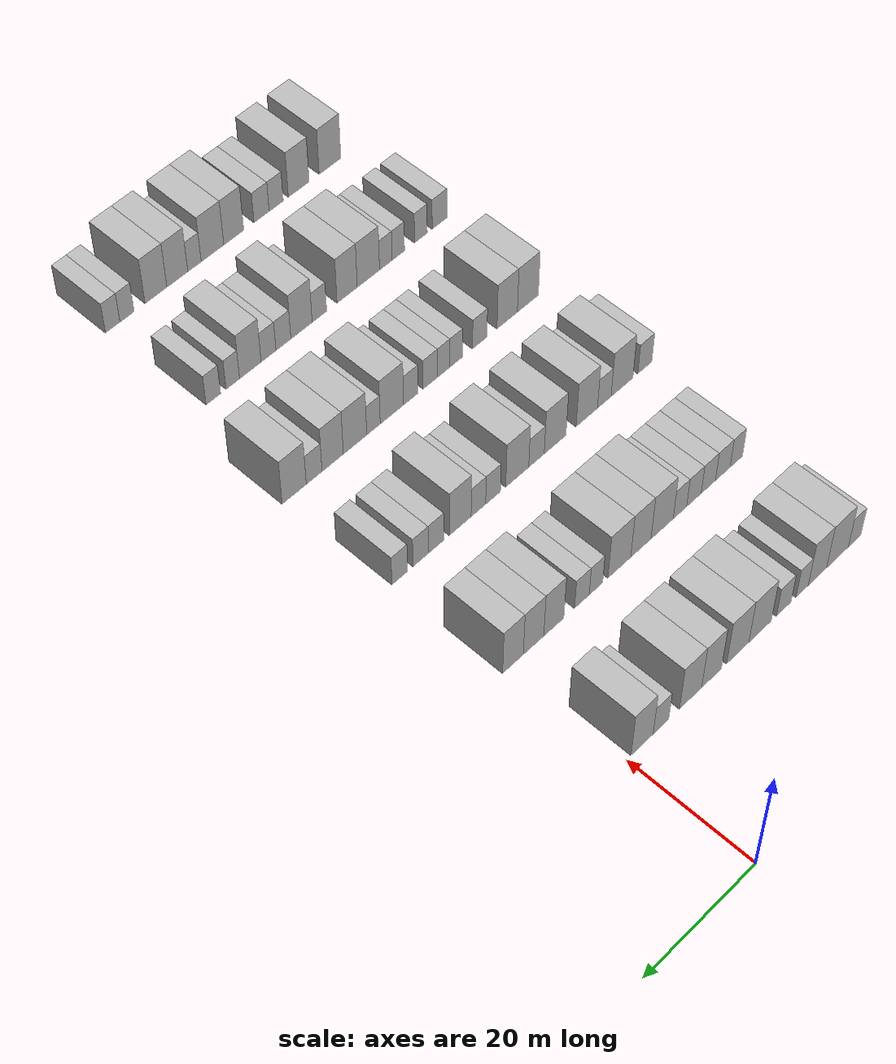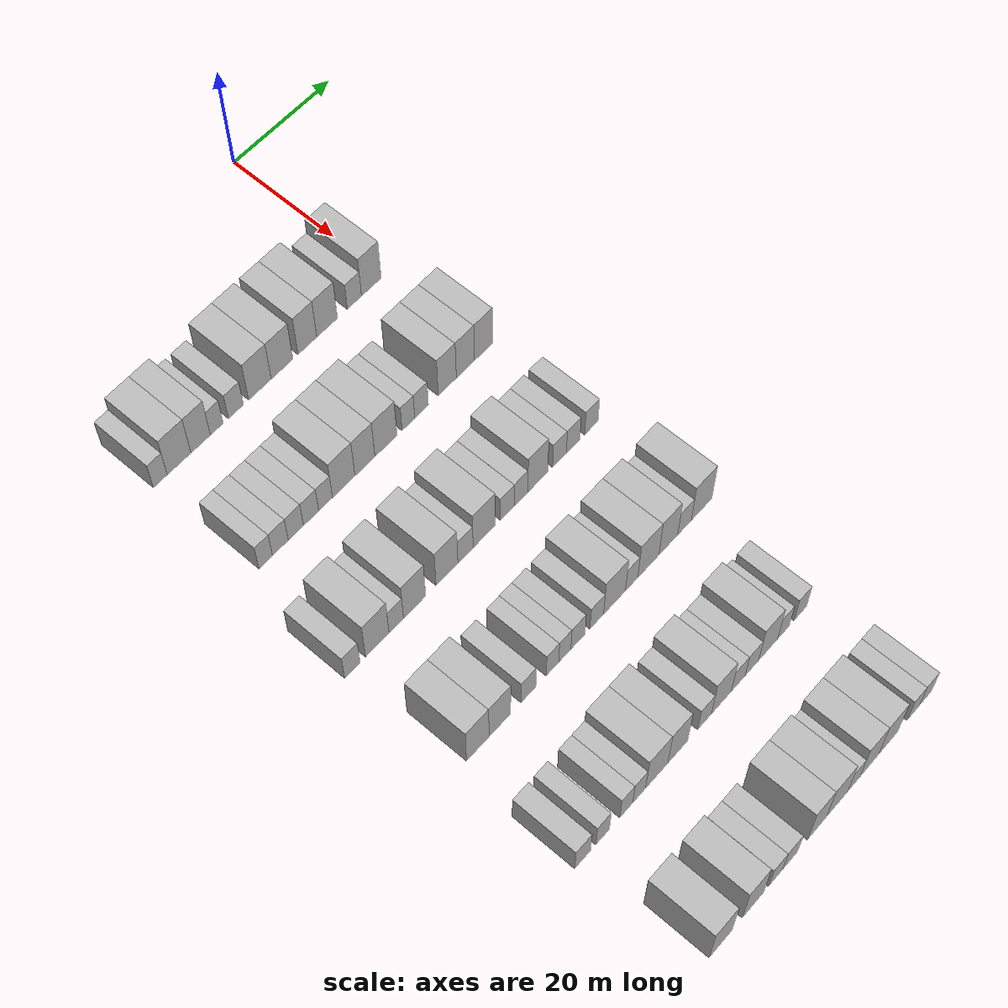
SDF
<sdf version="1.6">
 <world name="default">
  <model name="building_75">
   <static>1</static>
   <pose>25.0000 -44.1335 0 0.000000 0.000000 0.000000</pose>
   <link name="link">
    <pose>0 0 3.00 0 0 0</pose>
    <collision name="collision"><geometry><box><size>10.0000 2.5778 6.0000</size></box></geometry></collision>
    <visual name="visual">
     <cast_shadows>0</cast_shadows>
     <geometry><box><size>10.0000 2.5778 6.0000</size></box></geometry>
     <material>
      <script>
       <uri>model://HANNAS_wall/materials/scripts</uri>
       <uri>model://HANNAS_wall/materials/textures</uri>
       <name>vrc/HANNAS_wall</name>
      </script>
     </material>
    </visual>
   </link>
  </model>
  <model name="building_76">
   <static>1</static>
   <pose>25.0000 -40.6232 0 0.000000 0.000000 0.000000</pose>
   <link name="link">
    <pose>0 0 4.50 0 0 0</pose>
    <collision name="collision"><geometry><box><size>10.0000 4.4428 9.0000</size></box></geometry></collision>
    <visual name="visual">
     <cast_shadows>0</cast_shadows>
     <geometry><box><size>10.0000 4.4428 9.0000</size></box></geometry>
     <material>
      <script>
       <uri>model://HANNAS_wall/materials/scripts</uri>
       <uri>model://HANNAS_wall/materials/textures</uri>
       <name>vrc/HANNAS_wall</name>
      </script>
     </material>
    </visual>
   </link>
  </model>
  <model name="building_77">
   <static>1</static>
   <pose>25.0000 -36.5516 0 0.000000 0.000000 0.000000</pose>
   <link name="link">
    <pose>0 0 4.50 0 0 0</pose>
    <collision name="collision"><geometry><box><size>10.0000 3.7005 9.0000</size></box></geometry></collision>
    <visual name="visual">
     <cast_shadows>0</cast_shadows>
     <geometry><box><size>10.0000 3.7005 9.0000</size></box></geometry>
     <material>
      <script>
       <uri>model://HANNAS_wall/materials/scripts</uri>
       <uri>model://HANNAS_wall/materials/textures</uri>
       <name>vrc/HANNAS_wall</name>
      </script>
     </material>
    </visual>
   </link>
  </model>
  <model name="building_78">
   <static>1</static>
   <pose>25.0000 -33.4884 0 0.000000 0.000000 0.000000</pose>
   <link name="link">
    <pose>0 0 3.00 0 0 0</pose>
    <collision name="collision"><geometry><box><size>10.0000 2.4259 6.0000</size></box></geometry></collision>
    <visual name="visual">
     <cast_shadows>0</cast_shadows>
     <geometry><box><size>10.0000 2.4259 6.0000</size></box></geometry>
     <material>
      <script>
       <uri>model://HANNAS_wall/materials/scripts</uri>
       <uri>model://HANNAS_wall/materials/textures</uri>
       <name>vrc/HANNAS_wall</name>
      </script>
     </material>
    </visual>
   </link>
  </model>
  <model name="building_79">
   <static>1</static>
   <pose>25.0000 -29.8310 0 0.000000 0.000000 0.000000</pose>
   <link name="link">
    <pose>0 0 3.00 0 0 0</pose>
    <collision name="collision"><geometry><box><size>10.0000 2.8890 6.0000</size></box></geometry></collision>
    <visual name="visual">
     <cast_shadows>0</cast_shadows>
     <geometry><box><size>10.0000 2.8890 6.0000</size></box></geometry>
     <material>
      <script>
       <uri>model://HANNAS_wall/materials/scripts</uri>
       <uri>model://HANNAS_wall/materials/textures</uri>
       <name>vrc/HANNAS_wall</name>
      </script>
     </material>
    </visual>
   </link>
  </model>
  <model name="building_80">
   <static>1</static>
   <pose>25.0000 -25.1808 0 0.000000 0.000000 0.000000</pose>
   <link name="link">
    <pose>0 0 4.50 0 0 0</pose>
    <collision name="collision"><geometry><box><size>10.0000 4.4114 9.0000</size></box></geometry></collision>
    <visual name="visual">
     <cast_shadows>0</cast_shadows>
     <geometry><box><size>10.0000 4.4114 9.0000</size></box></geometry>
     <material>
      <script>
       <uri>model://HANNAS_wall/materials/scripts</uri>
       <uri>model://HANNAS_wall/materials/textures</uri>
       <name>vrc/HANNAS_wall</name>
      </script>
     </material>
    </visual>
   </link>
  </model>
  <model name="building_81">
   <static>1</static>
   <pose>25.0000 -20.8322 0 0.000000 0.000000 0.000000</pose>
   <link name="link">
    <pose>0 0 4.50 0 0 0</pose>
    <collision name="collision"><geometry><box><size>10.0000 4.2859 9.0000</size></box></geometry></collision>
    <visual name="visual">
     <cast_shadows>0</cast_shadows>
     <geometry><box><size>10.0000 4.2859 9.0000</size></box></geometry>
     <material>
      <script>
       <uri>model://HANNAS_wall/materials/scripts</uri>
       <uri>model://HANNAS_wall/materials/textures</uri>
       <name>vrc/HANNAS_wall</name>
      </script>
     </material>
    </visual>
   </link>
  </model>
  <model name="building_82">
   <static>1</static>
   <pose>25.0000 -15.8119 0 0.000000 0.000000 0.000000</pose>
   <link name="link">
    <pose>0 0 4.50 0 0 0</pose>
    <collision name="collision"><geometry><box><size>10.0000 3.7547 9.0000</size></box></geometry></collision>
    <visual name="visual">
     <cast_shadows>0</cast_shadows>
     <geometry><box><size>10.0000 3.7547 9.0000</size></box></geometry>
     <material>
      <script>
       <uri>model://HANNAS_wall/materials/scripts</uri>
       <uri>model://HANNAS_wall/materials/textures</uri>
       <name>vrc/HANNAS_wall</name>
      </script>
     </material>
    </visual>
   </link>
  </model>
  <model name="building_83">
   <static>1</static>
   <pose>25.0000 -11.8497 0 0.000000 0.000000 0.000000</pose>
   <link name="link">
    <pose>0 0 4.50 0 0 0</pose>
    <collision name="collision"><geometry><box><size>10.0000 4.1697 9.0000</size></box></geometry></collision>
    <visual name="visual">
     <cast_shadows>0</cast_shadows>
     <geometry><box><size>10.0000 4.1697 9.0000</size></box></geometry>
     <material>
      <script>
       <uri>model://HANNAS_wall/materials/scripts</uri>
       <uri>model://HANNAS_wall/materials/textures</uri>
       <name>vrc/HANNAS_wall</name>
      </script>
     </material>
    </visual>
   </link>
  </model>
  <model name="building_84">
   <static>1</static>
   <pose>25.0000 -6.3131 0 0.000000 0.000000 0.000000</pose>
   <link name="link">
    <pose>0 0 3.00 0 0 0</pose>
    <collision name="collision"><geometry><box><size>10.0000 2.9035 6.0000</size></box></geometry></collision>
    <visual name="visual">
     <cast_shadows>0</cast_shadows>
     <geometry><box><size>10.0000 2.9035 6.0000</size></box></geometry>
     <material>
      <script>
       <uri>model://HANNAS_wall/materials/scripts</uri>
       <uri>model://HANNAS_wall/materials/textures</uri>
       <name>vrc/HANNAS_wall</name>
      </script>
     </material>
    </visual>
   </link>
  </model>
  <model name="building_85">
   <static>1</static>
   <pose>25.0000 -2.8423 0 0.000000 0.000000 0.000000</pose>
   <link name="link">
    <pose>0 0 4.50 0 0 0</pose>
    <collision name="collision"><geometry><box><size>10.0000 4.0379 9.0000</size></box></geometry></collision>
    <visual name="visual">
     <cast_shadows>0</cast_shadows>
     <geometry><box><size>10.0000 4.0379 9.0000</size></box></geometry>
     <material>
      <script>
       <uri>model://HANNAS_wall/materials/scripts</uri>
       <uri>model://HANNAS_wall/materials/textures</uri>
       <name>vrc/HANNAS_wall</name>
      </script>
     </material>
    </visual>
   </link>
  </model>
  <model name="building_243">
   <static>1</static>
   <pose>44.0000 -43.4792 0 0.000000 0.000000 0.000000</pose>
   <link name="link">
    <pose>0 0 3.00 0 0 0</pose>
    <collision name="collision"><geometry><box><size>10.0000 2.5277 6.0000</size></box></geometry></collision>
    <visual name="visual">
     <cast_shadows>0</cast_shadows>
     <geometry><box><size>10.0000 2.5277 6.0000</size></box></geometry>
     <material>
      <script>
       <uri>model://HANNAS_wall/materials/scripts</uri>
       <uri>model://HANNAS_wall/materials/textures</uri>
       <name>vrc/HANNAS_wall</name>
      </script>
     </material>
    </visual>
   </link>
  </model>
  <model name="building_244">
   <static>1</static>
   <pose>44.0000 -40.7286 0 0.000000 0.000000 0.000000</pose>
   <link name="link">
    <pose>0 0 3.00 0 0 0</pose>
    <collision name="collision"><geometry><box><size>10.0000 2.9734 6.0000</size></box></geometry></collision>
    <visual name="visual">
     <cast_shadows>0</cast_shadows>
     <geometry><box><size>10.0000 2.9734 6.0000</size></box></geometry>
     <material>
      <script>
       <uri>model://HANNAS_wall/materials/scripts</uri>
       <uri>model://HANNAS_wall/materials/textures</uri>
       <name>vrc/HANNAS_wall</name>
      </script>
     </material>
    </visual>
   </link>
  </model>
  <model name="building_245">
   <static>1</static>
   <pose>44.0000 -37.8044 0 0.000000 0.000000 0.000000</pose>
   <link name="link">
    <pose>0 0 3.00 0 0 0</pose>
    <collision name="collision"><geometry><box><size>10.0000 2.8751 6.0000</size></box></geometry></collision>
    <visual name="visual">
     <cast_shadows>0</cast_shadows>
     <geometry><box><size>10.0000 2.8751 6.0000</size></box></geometry>
     <material>
      <script>
       <uri>model://HANNAS_wall/materials/scripts</uri>
       <uri>model://HANNAS_wall/materials/textures</uri>
       <name>vrc/HANNAS_wall</name>
      </script>
     </material>
    </visual>
   </link>
  </model>
  <model name="building_246">
   <static>1</static>
   <pose>44.0000 -34.9215 0 0.000000 0.000000 0.000000</pose>
   <link name="link">
    <pose>0 0 3.00 0 0 0</pose>
    <collision name="collision"><geometry><box><size>10.0000 2.8907 6.0000</size></box></geometry></collision>
    <visual name="visual">
     <cast_shadows>0</cast_shadows>
     <geometry><box><size>10.0000 2.8907 6.0000</size></box></geometry>
     <material>
      <script>
       <uri>model://HANNAS_wall/materials/scripts</uri>
       <uri>model://HANNAS_wall/materials/textures</uri>
       <name>vrc/HANNAS_wall</name>
      </script>
     </material>
    </visual>
   </link>
  </model>
  <model name="building_247">
   <static>1</static>
   <pose>44.0000 -32.1425 0 0.000000 0.000000 0.000000</pose>
   <link name="link">
    <pose>0 0 3.00 0 0 0</pose>
    <collision name="collision"><geometry><box><size>10.0000 2.6673 6.0000</size></box></geometry></collision>
    <visual name="visual">
     <cast_shadows>0</cast_shadows>
     <geometry><box><size>10.0000 2.6673 6.0000</size></box></geometry>
     <material>
      <script>
       <uri>model://HANNAS_wall/materials/scripts</uri>
       <uri>model://HANNAS_wall/materials/textures</uri>
       <name>vrc/HANNAS_wall</name>
      </script>
     </material>
    </visual>
   </link>
  </model>
  <model name="building_248">
   <static>1</static>
   <pose>44.0000 -28.6306 0 0.000000 0.000000 0.000000</pose>
   <link name="link">
    <pose>0 0 4.50 0 0 0</pose>
    <collision name="collision"><geometry><box><size>10.0000 4.3564 9.0000</size></box></geometry></collision>
    <visual name="visual">
     <cast_shadows>0</cast_shadows>
     <geometry><box><size>10.0000 4.3564 9.0000</size></box></geometry>
     <material>
      <script>
       <uri>model://HANNAS_wall/materials/scripts</uri>
       <uri>model://HANNAS_wall/materials/textures</uri>
       <name>vrc/HANNAS_wall</name>
      </script>
     </material>
    </visual>
   </link>
  </model>
  <model name="building_249">
   <static>1</static>
   <pose>44.0000 -24.4943 0 0.000000 0.000000 0.000000</pose>
   <link name="link">
    <pose>0 0 4.50 0 0 0</pose>
    <collision name="collision"><geometry><box><size>10.0000 3.9162 9.0000</size></box></geometry></collision>
    <visual name="visual">
     <cast_shadows>0</cast_shadows>
     <geometry><box><size>10.0000 3.9162 9.0000</size></box></geometry>
     <material>
      <script>
       <uri>model://HANNAS_wall/materials/scripts</uri>
       <uri>model://HANNAS_wall/materials/textures</uri>
       <name>vrc/HANNAS_wall</name>
      </script>
     </material>
    </visual>
   </link>
  </model>
  <model name="building_250">
   <static>1</static>
   <pose>44.0000 -20.3490 0 0.000000 0.000000 0.000000</pose>
   <link name="link">
    <pose>0 0 4.50 0 0 0</pose>
    <collision name="collision"><geometry><box><size>10.0000 4.3742 9.0000</size></box></geometry></collision>
    <visual name="visual">
     <cast_shadows>0</cast_shadows>
     <geometry><box><size>10.0000 4.3742 9.0000</size></box></geometry>
     <material>
      <script>
       <uri>model://HANNAS_wall/materials/scripts</uri>
       <uri>model://HANNAS_wall/materials/textures</uri>
       <name>vrc/HANNAS_wall</name>
      </script>
     </material>
    </visual>
   </link>
  </model>
  <model name="building_251">
   <static>1</static>
   <pose>44.0000 -15.8861 0 0.000000 0.000000 0.000000</pose>
   <link name="link">
    <pose>0 0 3.00 0 0 0</pose>
    <collision name="collision"><geometry><box><size>10.0000 2.5515 6.0000</size></box></geometry></collision>
    <visual name="visual">
     <cast_shadows>0</cast_shadows>
     <geometry><box><size>10.0000 2.5515 6.0000</size></box></geometry>
     <material>
      <script>
       <uri>model://HANNAS_wall/materials/scripts</uri>
       <uri>model://HANNAS_wall/materials/textures</uri>
       <name>vrc/HANNAS_wall</name>
      </script>
     </material>
    </visual>
   </link>
  </model>
  <model name="building_252">
   <static>1</static>
   <pose>44.0000 -13.2332 0 0.000000 0.000000 0.000000</pose>
   <link name="link">
    <pose>0 0 3.00 0 0 0</pose>
    <collision name="collision"><geometry><box><size>10.0000 2.7543 6.0000</size></box></geometry></collision>
    <visual name="visual">
     <cast_shadows>0</cast_shadows>
     <geometry><box><size>10.0000 2.7543 6.0000</size></box></geometry>
     <material>
      <script>
       <uri>model://HANNAS_wall/materials/scripts</uri>
       <uri>model://HANNAS_wall/materials/textures</uri>
       <name>vrc/HANNAS_wall</name>
      </script>
     </material>
    </visual>
   </link>
  </model>
  <model name="building_253">
   <static>1</static>
   <pose>44.0000 -7.9990 0 0.000000 0.000000 0.000000</pose>
   <link name="link">
    <pose>0 0 4.50 0 0 0</pose>
    <collision name="collision"><geometry><box><size>10.0000 3.7141 9.0000</size></box></geometry></collision>
    <visual name="visual">
     <cast_shadows>0</cast_shadows>
     <geometry><box><size>10.0000 3.7141 9.0000</size></box></geometry>
     <material>
      <script>
       <uri>model://HANNAS_wall/materials/scripts</uri>
       <uri>model://HANNAS_wall/materials/textures</uri>
       <name>vrc/HANNAS_wall</name>
      </script>
     </material>
    </visual>
   </link>
  </model>
  <model name="building_254">
   <static>1</static>
   <pose>44.0000 -4.2663 0 0.000000 0.000000 0.000000</pose>
   <link name="link">
    <pose>0 0 4.50 0 0 0</pose>
    <collision name="collision"><geometry><box><size>10.0000 3.7513 9.0000</size></box></geometry></collision>
    <visual name="visual">
     <cast_shadows>0</cast_shadows>
     <geometry><box><size>10.0000 3.7513 9.0000</size></box></geometry>
     <material>
      <script>
       <uri>model://HANNAS_wall/materials/scripts</uri>
       <uri>model://HANNAS_wall/materials/textures</uri>
       <name>vrc/HANNAS_wall</name>
      </script>
     </material>
    </visual>
   </link>
  </model>
  <model name="building_255">
   <static>1</static>
   <pose>44.0000 -0.5148 0 0.000000 0.000000 0.000000</pose>
   <link name="link">
    <pose>0 0 4.50 0 0 0</pose>
    <collision name="collision"><geometry><box><size>10.0000 3.7516 9.0000</size></box></geometry></collision>
    <visual name="visual">
     <cast_shadows>0</cast_shadows>
     <geometry><box><size>10.0000 3.7516 9.0000</size></box></geometry>
     <material>
      <script>
       <uri>model://HANNAS_wall/materials/scripts</uri>
       <uri>model://HANNAS_wall/materials/textures</uri>
       <name>vrc/HANNAS_wall</name>
      </script>
     </material>
    </visual>
   </link>
  </model>
  <model name="building_413">
   <static>1</static>
   <pose>63.0000 -47.1853 0 0.000000 0.000000 0.000000</pose>
   <link name="link">
    <pose>0 0 3.00 0 0 0</pose>
    <collision name="collision"><geometry><box><size>10.0000 2.8769 6.0000</size></box></geometry></collision>
    <visual name="visual">
     <cast_shadows>0</cast_shadows>
     <geometry><box><size>10.0000 2.8769 6.0000</size></box></geometry>
     <material>
      <script>
       <uri>model://HANNAS_wall/materials/scripts</uri>
       <uri>model://HANNAS_wall/materials/textures</uri>
       <name>vrc/HANNAS_wall</name>
      </script>
     </material>
    </visual>
   </link>
  </model>
  <model name="building_414">
   <static>1</static>
   <pose>63.0000 -42.5380 0 0.000000 0.000000 0.000000</pose>
   <link name="link">
    <pose>0 0 4.50 0 0 0</pose>
    <collision name="collision"><geometry><box><size>10.0000 4.4177 9.0000</size></box></geometry></collision>
    <visual name="visual">
     <cast_shadows>0</cast_shadows>
     <geometry><box><size>10.0000 4.4177 9.0000</size></box></geometry>
     <material>
      <script>
       <uri>model://HANNAS_wall/materials/scripts</uri>
       <uri>model://HANNAS_wall/materials/textures</uri>
       <name>vrc/HANNAS_wall</name>
      </script>
     </material>
    </visual>
   </link>
  </model>
  <model name="building_415">
   <static>1</static>
   <pose>63.0000 -38.9549 0 0.000000 0.000000 0.000000</pose>
   <link name="link">
    <pose>0 0 3.00 0 0 0</pose>
    <collision name="collision"><geometry><box><size>10.0000 2.7484 6.0000</size></box></geometry></collision>
    <visual name="visual">
     <cast_shadows>0</cast_shadows>
     <geometry><box><size>10.0000 2.7484 6.0000</size></box></geometry>
     <material>
      <script>
       <uri>model://HANNAS_wall/materials/scripts</uri>
       <uri>model://HANNAS_wall/materials/textures</uri>
       <name>vrc/HANNAS_wall</name>
      </script>
     </material>
    </visual>
   </link>
  </model>
  <model name="building_416">
   <static>1</static>
   <pose>63.0000 -35.4627 0 0.000000 0.000000 0.000000</pose>
   <link name="link">
    <pose>0 0 4.50 0 0 0</pose>
    <collision name="collision"><geometry><box><size>10.0000 4.2361 9.0000</size></box></geometry></collision>
    <visual name="visual">
     <cast_shadows>0</cast_shadows>
     <geometry><box><size>10.0000 4.2361 9.0000</size></box></geometry>
     <material>
      <script>
       <uri>model://HANNAS_wall/materials/scripts</uri>
       <uri>model://HANNAS_wall/materials/textures</uri>
       <name>vrc/HANNAS_wall</name>
      </script>
     </material>
    </visual>
   </link>
  </model>
  <model name="building_417">
   <static>1</static>
   <pose>63.0000 -29.2158 0 0.000000 0.000000 0.000000</pose>
   <link name="link">
    <pose>0 0 4.50 0 0 0</pose>
    <collision name="collision"><geometry><box><size>10.0000 4.2576 9.0000</size></box></geometry></collision>
    <visual name="visual">
     <cast_shadows>0</cast_shadows>
     <geometry><box><size>10.0000 4.2576 9.0000</size></box></geometry>
     <material>
      <script>
       <uri>model://HANNAS_wall/materials/scripts</uri>
       <uri>model://HANNAS_wall/materials/textures</uri>
       <name>vrc/HANNAS_wall</name>
      </script>
     </material>
    </visual>
   </link>
  </model>
  <model name="building_418">
   <static>1</static>
   <pose>63.0000 -25.5880 0 0.000000 0.000000 0.000000</pose>
   <link name="link">
    <pose>0 0 3.00 0 0 0</pose>
    <collision name="collision"><geometry><box><size>10.0000 2.9980 6.0000</size></box></geometry></collision>
    <visual name="visual">
     <cast_shadows>0</cast_shadows>
     <geometry><box><size>10.0000 2.9980 6.0000</size></box></geometry>
     <material>
      <script>
       <uri>model://HANNAS_wall/materials/scripts</uri>
       <uri>model://HANNAS_wall/materials/textures</uri>
       <name>vrc/HANNAS_wall</name>
      </script>
     </material>
    </visual>
   </link>
  </model>
  <model name="building_419">
   <static>1</static>
   <pose>63.0000 -21.8840 0 0.000000 0.000000 0.000000</pose>
   <link name="link">
    <pose>0 0 4.50 0 0 0</pose>
    <collision name="collision"><geometry><box><size>10.0000 4.4101 9.0000</size></box></geometry></collision>
    <visual name="visual">
     <cast_shadows>0</cast_shadows>
     <geometry><box><size>10.0000 4.4101 9.0000</size></box></geometry>
     <material>
      <script>
       <uri>model://HANNAS_wall/materials/scripts</uri>
       <uri>model://HANNAS_wall/materials/textures</uri>
       <name>vrc/HANNAS_wall</name>
      </script>
     </material>
    </visual>
   </link>
  </model>
  <model name="building_420">
   <static>1</static>
   <pose>63.0000 -17.2790 0 0.000000 0.000000 0.000000</pose>
   <link name="link">
    <pose>0 0 3.00 0 0 0</pose>
    <collision name="collision"><geometry><box><size>10.0000 2.7999 6.0000</size></box></geometry></collision>
    <visual name="visual">
     <cast_shadows>0</cast_shadows>
     <geometry><box><size>10.0000 2.7999 6.0000</size></box></geometry>
     <material>
      <script>
       <uri>model://HANNAS_wall/materials/scripts</uri>
       <uri>model://HANNAS_wall/materials/textures</uri>
       <name>vrc/HANNAS_wall</name>
      </script>
     </material>
    </visual>
   </link>
  </model>
  <model name="building_421">
   <static>1</static>
   <pose>63.0000 -14.5141 0 0.000000 0.000000 0.000000</pose>
   <link name="link">
    <pose>0 0 3.00 0 0 0</pose>
    <collision name="collision"><geometry><box><size>10.0000 2.7298 6.0000</size></box></geometry></collision>
    <visual name="visual">
     <cast_shadows>0</cast_shadows>
     <geometry><box><size>10.0000 2.7298 6.0000</size></box></geometry>
     <material>
      <script>
       <uri>model://HANNAS_wall/materials/scripts</uri>
       <uri>model://HANNAS_wall/materials/textures</uri>
       <name>vrc/HANNAS_wall</name>
      </script>
     </material>
    </visual>
   </link>
  </model>
  <model name="building_422">
   <static>1</static>
   <pose>63.0000 -11.1131 0 0.000000 0.000000 0.000000</pose>
   <link name="link">
    <pose>0 0 4.50 0 0 0</pose>
    <collision name="collision"><geometry><box><size>10.0000 4.0723 9.0000</size></box></geometry></collision>
    <visual name="visual">
     <cast_shadows>0</cast_shadows>
     <geometry><box><size>10.0000 4.0723 9.0000</size></box></geometry>
     <material>
      <script>
       <uri>model://HANNAS_wall/materials/scripts</uri>
       <uri>model://HANNAS_wall/materials/textures</uri>
       <name>vrc/HANNAS_wall</name>
      </script>
     </material>
    </visual>
   </link>
  </model>
  <model name="building_423">
   <static>1</static>
   <pose>63.0000 -6.6524 0 0.000000 0.000000 0.000000</pose>
   <link name="link">
    <pose>0 0 3.00 0 0 0</pose>
    <collision name="collision"><geometry><box><size>10.0000 2.8490 6.0000</size></box></geometry></collision>
    <visual name="visual">
     <cast_shadows>0</cast_shadows>
     <geometry><box><size>10.0000 2.8490 6.0000</size></box></geometry>
     <material>
      <script>
       <uri>model://HANNAS_wall/materials/scripts</uri>
       <uri>model://HANNAS_wall/materials/textures</uri>
       <name>vrc/HANNAS_wall</name>
      </script>
     </material>
    </visual>
   </link>
  </model>
  <model name="building_424">
   <static>1</static>
   <pose>63.0000 -3.8232 0 0.000000 0.000000 0.000000</pose>
   <link name="link">
    <pose>0 0 3.00 0 0 0</pose>
    <collision name="collision"><geometry><box><size>10.0000 2.8093 6.0000</size></box></geometry></collision>
    <visual name="visual">
     <cast_shadows>0</cast_shadows>
     <geometry><box><size>10.0000 2.8093 6.0000</size></box></geometry>
     <material>
      <script>
       <uri>model://HANNAS_wall/materials/scripts</uri>
       <uri>model://HANNAS_wall/materials/textures</uri>
       <name>vrc/HANNAS_wall</name>
      </script>
     </material>
    </visual>
   </link>
  </model>
  <model name="building_425">
   <static>1</static>
   <pose>63.0000 -0.0105 0 0.000000 0.000000 0.000000</pose>
   <link name="link">
    <pose>0 0 3.00 0 0 0</pose>
    <collision name="collision"><geometry><box><size>10.0000 2.8162 6.0000</size></box></geometry></collision>
    <visual name="visual">
     <cast_shadows>0</cast_shadows>
     <geometry><box><size>10.0000 2.8162 6.0000</size></box></geometry>
     <material>
      <script>
       <uri>model://HANNAS_wall/materials/scripts</uri>
       <uri>model://HANNAS_wall/materials/textures</uri>
       <name>vrc/HANNAS_wall</name>
      </script>
     </material>
    </visual>
   </link>
  </model>
  <model name="building_581">
   <static>1</static>
   <pose>82.0000 -44.6354 0 0.000000 0.000000 0.000000</pose>
   <link name="link">
    <pose>0 0 4.50 0 0 0</pose>
    <collision name="collision"><geometry><box><size>10.0000 4.2456 9.0000</size></box></geometry></collision>
    <visual name="visual">
     <cast_shadows>0</cast_shadows>
     <geometry><box><size>10.0000 4.2456 9.0000</size></box></geometry>
     <material>
      <script>
       <uri>model://HANNAS_wall/materials/scripts</uri>
       <uri>model://HANNAS_wall/materials/textures</uri>
       <name>vrc/HANNAS_wall</name>
      </script>
     </material>
    </visual>
   </link>
  </model>
  <model name="building_582">
   <static>1</static>
   <pose>82.0000 -40.4692 0 0.000000 0.000000 0.000000</pose>
   <link name="link">
    <pose>0 0 4.50 0 0 0</pose>
    <collision name="collision"><geometry><box><size>10.0000 4.0868 9.0000</size></box></geometry></collision>
    <visual name="visual">
     <cast_shadows>0</cast_shadows>
     <geometry><box><size>10.0000 4.0868 9.0000</size></box></geometry>
     <material>
      <script>
       <uri>model://HANNAS_wall/materials/scripts</uri>
       <uri>model://HANNAS_wall/materials/textures</uri>
       <name>vrc/HANNAS_wall</name>
      </script>
     </material>
    </visual>
   </link>
  </model>
  <model name="building_583">
   <static>1</static>
   <pose>82.0000 -34.9957 0 0.000000 0.000000 0.000000</pose>
   <link name="link">
    <pose>0 0 3.00 0 0 0</pose>
    <collision name="collision"><geometry><box><size>10.0000 2.8603 6.0000</size></box></geometry></collision>
    <visual name="visual">
     <cast_shadows>0</cast_shadows>
     <geometry><box><size>10.0000 2.8603 6.0000</size></box></geometry>
     <material>
      <script>
       <uri>model://HANNAS_wall/materials/scripts</uri>
       <uri>model://HANNAS_wall/materials/textures</uri>
       <name>vrc/HANNAS_wall</name>
      </script>
     </material>
    </visual>
   </link>
  </model>
  <model name="building_584">
   <static>1</static>
   <pose>82.0000 -30.3475 0 0.000000 0.000000 0.000000</pose>
   <link name="link">
    <pose>0 0 3.00 0 0 0</pose>
    <collision name="collision"><geometry><box><size>10.0000 2.4360 6.0000</size></box></geometry></collision>
    <visual name="visual">
     <cast_shadows>0</cast_shadows>
     <geometry><box><size>10.0000 2.4360 6.0000</size></box></geometry>
     <material>
      <script>
       <uri>model://HANNAS_wall/materials/scripts</uri>
       <uri>model://HANNAS_wall/materials/textures</uri>
       <name>vrc/HANNAS_wall</name>
      </script>
     </material>
    </visual>
   </link>
  </model>
  <model name="building_585">
   <static>1</static>
   <pose>82.0000 -27.9281 0 0.000000 0.000000 0.000000</pose>
   <link name="link">
    <pose>0 0 3.00 0 0 0</pose>
    <collision name="collision"><geometry><box><size>10.0000 2.4027 6.0000</size></box></geometry></collision>
    <visual name="visual">
     <cast_shadows>0</cast_shadows>
     <geometry><box><size>10.0000 2.4027 6.0000</size></box></geometry>
     <material>
      <script>
       <uri>model://HANNAS_wall/materials/scripts</uri>
       <uri>model://HANNAS_wall/materials/textures</uri>
       <name>vrc/HANNAS_wall</name>
      </script>
     </material>
    </visual>
   </link>
  </model>
  <model name="building_586">
   <static>1</static>
   <pose>82.0000 -25.3410 0 0.000000 0.000000 0.000000</pose>
   <link name="link">
    <pose>0 0 3.00 0 0 0</pose>
    <collision name="collision"><geometry><box><size>10.0000 2.7716 6.0000</size></box></geometry></collision>
    <visual name="visual">
     <cast_shadows>0</cast_shadows>
     <geometry><box><size>10.0000 2.7716 6.0000</size></box></geometry>
     <material>
      <script>
       <uri>model://HANNAS_wall/materials/scripts</uri>
       <uri>model://HANNAS_wall/materials/textures</uri>
       <name>vrc/HANNAS_wall</name>
      </script>
     </material>
    </visual>
   </link>
  </model>
  <model name="building_587">
   <static>1</static>
   <pose>82.0000 -21.5829 0 0.000000 0.000000 0.000000</pose>
   <link name="link">
    <pose>0 0 3.00 0 0 0</pose>
    <collision name="collision"><geometry><box><size>10.0000 2.7446 6.0000</size></box></geometry></collision>
    <visual name="visual">
     <cast_shadows>0</cast_shadows>
     <geometry><box><size>10.0000 2.7446 6.0000</size></box></geometry>
     <material>
      <script>
       <uri>model://HANNAS_wall/materials/scripts</uri>
       <uri>model://HANNAS_wall/materials/textures</uri>
       <name>vrc/HANNAS_wall</name>
      </script>
     </material>
    </visual>
   </link>
  </model>
  <model name="building_588">
   <static>1</static>
   <pose>82.0000 -18.0006 0 0.000000 0.000000 0.000000</pose>
   <link name="link">
    <pose>0 0 4.50 0 0 0</pose>
    <collision name="collision"><geometry><box><size>10.0000 4.4201 9.0000</size></box></geometry></collision>
    <visual name="visual">
     <cast_shadows>0</cast_shadows>
     <geometry><box><size>10.0000 4.4201 9.0000</size></box></geometry>
     <material>
      <script>
       <uri>model://HANNAS_wall/materials/scripts</uri>
       <uri>model://HANNAS_wall/materials/textures</uri>
       <name>vrc/HANNAS_wall</name>
      </script>
     </material>
    </visual>
   </link>
  </model>
  <model name="building_589">
   <static>1</static>
   <pose>82.0000 -14.5273 0 0.000000 0.000000 0.000000</pose>
   <link name="link">
    <pose>0 0 3.00 0 0 0</pose>
    <collision name="collision"><geometry><box><size>10.0000 2.5265 6.0000</size></box></geometry></collision>
    <visual name="visual">
     <cast_shadows>0</cast_shadows>
     <geometry><box><size>10.0000 2.5265 6.0000</size></box></geometry>
     <material>
      <script>
       <uri>model://HANNAS_wall/materials/scripts</uri>
       <uri>model://HANNAS_wall/materials/textures</uri>
       <name>vrc/HANNAS_wall</name>
      </script>
     </material>
    </visual>
   </link>
  </model>
  <model name="building_590">
   <static>1</static>
   <pose>82.0000 -11.0879 0 0.000000 0.000000 0.000000</pose>
   <link name="link">
    <pose>0 0 4.50 0 0 0</pose>
    <collision name="collision"><geometry><box><size>10.0000 4.3523 9.0000</size></box></geometry></collision>
    <visual name="visual">
     <cast_shadows>0</cast_shadows>
     <geometry><box><size>10.0000 4.3523 9.0000</size></box></geometry>
     <material>
      <script>
       <uri>model://HANNAS_wall/materials/scripts</uri>
       <uri>model://HANNAS_wall/materials/textures</uri>
       <name>vrc/HANNAS_wall</name>
      </script>
     </material>
    </visual>
   </link>
  </model>
  <model name="building_591">
   <static>1</static>
   <pose>82.0000 -6.9554 0 0.000000 0.000000 0.000000</pose>
   <link name="link">
    <pose>0 0 4.50 0 0 0</pose>
    <collision name="collision"><geometry><box><size>10.0000 3.9128 9.0000</size></box></geometry></collision>
    <visual name="visual">
     <cast_shadows>0</cast_shadows>
     <geometry><box><size>10.0000 3.9128 9.0000</size></box></geometry>
     <material>
      <script>
       <uri>model://HANNAS_wall/materials/scripts</uri>
       <uri>model://HANNAS_wall/materials/textures</uri>
       <name>vrc/HANNAS_wall</name>
      </script>
     </material>
    </visual>
   </link>
  </model>
  <model name="building_592">
   <static>1</static>
   <pose>82.0000 -3.5650 0 0.000000 0.000000 0.000000</pose>
   <link name="link">
    <pose>0 0 3.00 0 0 0</pose>
    <collision name="collision"><geometry><box><size>10.0000 2.8680 6.0000</size></box></geometry></collision>
    <visual name="visual">
     <cast_shadows>0</cast_shadows>
     <geometry><box><size>10.0000 2.8680 6.0000</size></box></geometry>
     <material>
      <script>
       <uri>model://HANNAS_wall/materials/scripts</uri>
       <uri>model://HANNAS_wall/materials/textures</uri>
       <name>vrc/HANNAS_wall</name>
      </script>
     </material>
    </visual>
   </link>
  </model>
  <model name="building_593">
   <static>1</static>
   <pose>82.0000 0.0511 0 0.000000 0.000000 0.000000</pose>
   <link name="link">
    <pose>0 0 4.50 0 0 0</pose>
    <collision name="collision"><geometry><box><size>10.0000 4.3642 9.0000</size></box></geometry></collision>
    <visual name="visual">
     <cast_shadows>0</cast_shadows>
     <geometry><box><size>10.0000 4.3642 9.0000</size></box></geometry>
     <material>
      <script>
       <uri>model://HANNAS_wall/materials/scripts</uri>
       <uri>model://HANNAS_wall/materials/textures</uri>
       <name>vrc/HANNAS_wall</name>
      </script>
     </material>
    </visual>
   </link>
  </model>
  <model name="building_753">
   <static>1</static>
   <pose>101.0000 -46.9492 0 0.000000 0.000000 0.000000</pose>
   <link name="link">
    <pose>0 0 3.00 0 0 0</pose>
    <collision name="collision"><geometry><box><size>10.0000 2.9788 6.0000</size></box></geometry></collision>
    <visual name="visual">
     <cast_shadows>0</cast_shadows>
     <geometry><box><size>10.0000 2.9788 6.0000</size></box></geometry>
     <material>
      <script>
       <uri>model://HANNAS_wall/materials/scripts</uri>
       <uri>model://HANNAS_wall/materials/textures</uri>
       <name>vrc/HANNAS_wall</name>
      </script>
     </material>
    </visual>
   </link>
  </model>
  <model name="building_754">
   <static>1</static>
   <pose>101.0000 -43.1760 0 0.000000 0.000000 0.000000</pose>
   <link name="link">
    <pose>0 0 3.00 0 0 0</pose>
    <collision name="collision"><geometry><box><size>10.0000 2.5675 6.0000</size></box></geometry></collision>
    <visual name="visual">
     <cast_shadows>0</cast_shadows>
     <geometry><box><size>10.0000 2.5675 6.0000</size></box></geometry>
     <material>
      <script>
       <uri>model://HANNAS_wall/materials/scripts</uri>
       <uri>model://HANNAS_wall/materials/textures</uri>
       <name>vrc/HANNAS_wall</name>
      </script>
     </material>
    </visual>
   </link>
  </model>
  <model name="building_755">
   <static>1</static>
   <pose>101.0000 -38.6567 0 0.000000 0.000000 0.000000</pose>
   <link name="link">
    <pose>0 0 3.00 0 0 0</pose>
    <collision name="collision"><geometry><box><size>10.0000 2.4712 6.0000</size></box></geometry></collision>
    <visual name="visual">
     <cast_shadows>0</cast_shadows>
     <geometry><box><size>10.0000 2.4712 6.0000</size></box></geometry>
     <material>
      <script>
       <uri>model://HANNAS_wall/materials/scripts</uri>
       <uri>model://HANNAS_wall/materials/textures</uri>
       <name>vrc/HANNAS_wall</name>
      </script>
     </material>
    </visual>
   </link>
  </model>
  <model name="building_756">
   <static>1</static>
   <pose>101.0000 -36.1720 0 0.000000 0.000000 0.000000</pose>
   <link name="link">
    <pose>0 0 3.00 0 0 0</pose>
    <collision name="collision"><geometry><box><size>10.0000 2.4982 6.0000</size></box></geometry></collision>
    <visual name="visual">
     <cast_shadows>0</cast_shadows>
     <geometry><box><size>10.0000 2.4982 6.0000</size></box></geometry>
     <material>
      <script>
       <uri>model://HANNAS_wall/materials/scripts</uri>
       <uri>model://HANNAS_wall/materials/textures</uri>
       <name>vrc/HANNAS_wall</name>
      </script>
     </material>
    </visual>
   </link>
  </model>
  <model name="building_757">
   <static>1</static>
   <pose>101.0000 -32.7360 0 0.000000 0.000000 0.000000</pose>
   <link name="link">
    <pose>0 0 4.50 0 0 0</pose>
    <collision name="collision"><geometry><box><size>10.0000 4.3737 9.0000</size></box></geometry></collision>
    <visual name="visual">
     <cast_shadows>0</cast_shadows>
     <geometry><box><size>10.0000 4.3737 9.0000</size></box></geometry>
     <material>
      <script>
       <uri>model://HANNAS_wall/materials/scripts</uri>
       <uri>model://HANNAS_wall/materials/textures</uri>
       <name>vrc/HANNAS_wall</name>
      </script>
     </material>
    </visual>
   </link>
  </model>
  <model name="building_758">
   <static>1</static>
   <pose>101.0000 -28.5835 0 0.000000 0.000000 0.000000</pose>
   <link name="link">
    <pose>0 0 4.50 0 0 0</pose>
    <collision name="collision"><geometry><box><size>10.0000 3.9314 9.0000</size></box></geometry></collision>
    <visual name="visual">
     <cast_shadows>0</cast_shadows>
     <geometry><box><size>10.0000 3.9314 9.0000</size></box></geometry>
     <material>
      <script>
       <uri>model://HANNAS_wall/materials/scripts</uri>
       <uri>model://HANNAS_wall/materials/textures</uri>
       <name>vrc/HANNAS_wall</name>
      </script>
     </material>
    </visual>
   </link>
  </model>
  <model name="building_759">
   <static>1</static>
   <pose>101.0000 -23.2322 0 0.000000 0.000000 0.000000</pose>
   <link name="link">
    <pose>0 0 3.00 0 0 0</pose>
    <collision name="collision"><geometry><box><size>10.0000 2.7713 6.0000</size></box></geometry></collision>
    <visual name="visual">
     <cast_shadows>0</cast_shadows>
     <geometry><box><size>10.0000 2.7713 6.0000</size></box></geometry>
     <material>
      <script>
       <uri>model://HANNAS_wall/materials/scripts</uri>
       <uri>model://HANNAS_wall/materials/textures</uri>
       <name>vrc/HANNAS_wall</name>
      </script>
     </material>
    </visual>
   </link>
  </model>
  <model name="building_760">
   <static>1</static>
   <pose>101.0000 -19.8249 0 0.000000 0.000000 0.000000</pose>
   <link name="link">
    <pose>0 0 4.50 0 0 0</pose>
    <collision name="collision"><geometry><box><size>10.0000 4.0433 9.0000</size></box></geometry></collision>
    <visual name="visual">
     <cast_shadows>0</cast_shadows>
     <geometry><box><size>10.0000 4.0433 9.0000</size></box></geometry>
     <material>
      <script>
       <uri>model://HANNAS_wall/materials/scripts</uri>
       <uri>model://HANNAS_wall/materials/textures</uri>
       <name>vrc/HANNAS_wall</name>
      </script>
     </material>
    </visual>
   </link>
  </model>
  <model name="building_761">
   <static>1</static>
   <pose>101.0000 -16.3998 0 0.000000 0.000000 0.000000</pose>
   <link name="link">
    <pose>0 0 3.00 0 0 0</pose>
    <collision name="collision"><geometry><box><size>10.0000 2.8069 6.0000</size></box></geometry></collision>
    <visual name="visual">
     <cast_shadows>0</cast_shadows>
     <geometry><box><size>10.0000 2.8069 6.0000</size></box></geometry>
     <material>
      <script>
       <uri>model://HANNAS_wall/materials/scripts</uri>
       <uri>model://HANNAS_wall/materials/textures</uri>
       <name>vrc/HANNAS_wall</name>
      </script>
     </material>
    </visual>
   </link>
  </model>
  <model name="building_762">
   <static>1</static>
   <pose>101.0000 -13.6048 0 0.000000 0.000000 0.000000</pose>
   <link name="link">
    <pose>0 0 3.00 0 0 0</pose>
    <collision name="collision"><geometry><box><size>10.0000 2.7831 6.0000</size></box></geometry></collision>
    <visual name="visual">
     <cast_shadows>0</cast_shadows>
     <geometry><box><size>10.0000 2.7831 6.0000</size></box></geometry>
     <material>
      <script>
       <uri>model://HANNAS_wall/materials/scripts</uri>
       <uri>model://HANNAS_wall/materials/textures</uri>
       <name>vrc/HANNAS_wall</name>
      </script>
     </material>
    </visual>
   </link>
  </model>
  <model name="building_763">
   <static>1</static>
   <pose>101.0000 -10.2197 0 0.000000 0.000000 0.000000</pose>
   <link name="link">
    <pose>0 0 4.50 0 0 0</pose>
    <collision name="collision"><geometry><box><size>10.0000 3.9872 9.0000</size></box></geometry></collision>
    <visual name="visual">
     <cast_shadows>0</cast_shadows>
     <geometry><box><size>10.0000 3.9872 9.0000</size></box></geometry>
     <material>
      <script>
       <uri>model://HANNAS_wall/materials/scripts</uri>
       <uri>model://HANNAS_wall/materials/textures</uri>
       <name>vrc/HANNAS_wall</name>
      </script>
     </material>
    </visual>
   </link>
  </model>
  <model name="building_764">
   <static>1</static>
   <pose>101.0000 -6.9841 0 0.000000 0.000000 0.000000</pose>
   <link name="link">
    <pose>0 0 3.00 0 0 0</pose>
    <collision name="collision"><geometry><box><size>10.0000 2.4839 6.0000</size></box></geometry></collision>
    <visual name="visual">
     <cast_shadows>0</cast_shadows>
     <geometry><box><size>10.0000 2.4839 6.0000</size></box></geometry>
     <material>
      <script>
       <uri>model://HANNAS_wall/materials/scripts</uri>
       <uri>model://HANNAS_wall/materials/textures</uri>
       <name>vrc/HANNAS_wall</name>
      </script>
     </material>
    </visual>
   </link>
  </model>
  <model name="building_765">
   <static>1</static>
   <pose>101.0000 -3.4166 0 0.000000 0.000000 0.000000</pose>
   <link name="link">
    <pose>0 0 3.00 0 0 0</pose>
    <collision name="collision"><geometry><box><size>10.0000 2.6511 6.0000</size></box></geometry></collision>
    <visual name="visual">
     <cast_shadows>0</cast_shadows>
     <geometry><box><size>10.0000 2.6511 6.0000</size></box></geometry>
     <material>
      <script>
       <uri>model://HANNAS_wall/materials/scripts</uri>
       <uri>model://HANNAS_wall/materials/textures</uri>
       <name>vrc/HANNAS_wall</name>
      </script>
     </material>
    </visual>
   </link>
  </model>
  <model name="building_932">
   <static>1</static>
   <pose>120.0000 -44.0725 0 0.000000 0.000000 0.000000</pose>
   <link name="link">
    <pose>0 0 4.50 0 0 0</pose>
    <collision name="collision"><geometry><box><size>10.0000 4.3734 9.0000</size></box></geometry></collision>
    <visual name="visual">
     <cast_shadows>0</cast_shadows>
     <geometry><box><size>10.0000 4.3734 9.0000</size></box></geometry>
     <material>
      <script>
       <uri>model://HANNAS_wall/materials/scripts</uri>
       <uri>model://HANNAS_wall/materials/textures</uri>
       <name>vrc/HANNAS_wall</name>
      </script>
     </material>
    </visual>
   </link>
  </model>
  <model name="building_933">
   <static>1</static>
   <pose>120.0000 -37.8196 0 0.000000 0.000000 0.000000</pose>
   <link name="link">
    <pose>0 0 4.50 0 0 0</pose>
    <collision name="collision"><geometry><box><size>10.0000 4.1323 9.0000</size></box></geometry></collision>
    <visual name="visual">
     <cast_shadows>0</cast_shadows>
     <geometry><box><size>10.0000 4.1323 9.0000</size></box></geometry>
     <material>
      <script>
       <uri>model://HANNAS_wall/materials/scripts</uri>
       <uri>model://HANNAS_wall/materials/textures</uri>
       <name>vrc/HANNAS_wall</name>
      </script>
     </material>
    </visual>
   </link>
  </model>
  <model name="building_934">
   <static>1</static>
   <pose>120.0000 -33.3663 0 0.000000 0.000000 0.000000</pose>
   <link name="link">
    <pose>0 0 3.00 0 0 0</pose>
    <collision name="collision"><geometry><box><size>10.0000 2.7744 6.0000</size></box></geometry></collision>
    <visual name="visual">
     <cast_shadows>0</cast_shadows>
     <geometry><box><size>10.0000 2.7744 6.0000</size></box></geometry>
     <material>
      <script>
       <uri>model://HANNAS_wall/materials/scripts</uri>
       <uri>model://HANNAS_wall/materials/textures</uri>
       <name>vrc/HANNAS_wall</name>
      </script>
     </material>
    </visual>
   </link>
  </model>
  <model name="building_935">
   <static>1</static>
   <pose>120.0000 -30.4997 0 0.000000 0.000000 0.000000</pose>
   <link name="link">
    <pose>0 0 3.00 0 0 0</pose>
    <collision name="collision"><geometry><box><size>10.0000 2.9586 6.0000</size></box></geometry></collision>
    <visual name="visual">
     <cast_shadows>0</cast_shadows>
     <geometry><box><size>10.0000 2.9586 6.0000</size></box></geometry>
     <material>
      <script>
       <uri>model://HANNAS_wall/materials/scripts</uri>
       <uri>model://HANNAS_wall/materials/textures</uri>
       <name>vrc/HANNAS_wall</name>
      </script>
     </material>
    </visual>
   </link>
  </model>
  <model name="building_936">
   <static>1</static>
   <pose>120.0000 -25.1069 0 0.000000 0.000000 0.000000</pose>
   <link name="link">
    <pose>0 0 4.50 0 0 0</pose>
    <collision name="collision"><geometry><box><size>10.0000 3.8270 9.0000</size></box></geometry></collision>
    <visual name="visual">
     <cast_shadows>0</cast_shadows>
     <geometry><box><size>10.0000 3.8270 9.0000</size></box></geometry>
     <material>
      <script>
       <uri>model://HANNAS_wall/materials/scripts</uri>
       <uri>model://HANNAS_wall/materials/textures</uri>
       <name>vrc/HANNAS_wall</name>
      </script>
     </material>
    </visual>
   </link>
  </model>
  <model name="building_937">
   <static>1</static>
   <pose>120.0000 -21.0417 0 0.000000 0.000000 0.000000</pose>
   <link name="link">
    <pose>0 0 4.50 0 0 0</pose>
    <collision name="collision"><geometry><box><size>10.0000 4.3034 9.0000</size></box></geometry></collision>
    <visual name="visual">
     <cast_shadows>0</cast_shadows>
     <geometry><box><size>10.0000 4.3034 9.0000</size></box></geometry>
     <material>
      <script>
       <uri>model://HANNAS_wall/materials/scripts</uri>
       <uri>model://HANNAS_wall/materials/textures</uri>
       <name>vrc/HANNAS_wall</name>
      </script>
     </material>
    </visual>
   </link>
  </model>
  <model name="building_938">
   <static>1</static>
   <pose>120.0000 -17.6241 0 0.000000 0.000000 0.000000</pose>
   <link name="link">
    <pose>0 0 3.00 0 0 0</pose>
    <collision name="collision"><geometry><box><size>10.0000 2.5318 6.0000</size></box></geometry></collision>
    <visual name="visual">
     <cast_shadows>0</cast_shadows>
     <geometry><box><size>10.0000 2.5318 6.0000</size></box></geometry>
     <material>
      <script>
       <uri>model://HANNAS_wall/materials/scripts</uri>
       <uri>model://HANNAS_wall/materials/textures</uri>
       <name>vrc/HANNAS_wall</name>
      </script>
     </material>
    </visual>
   </link>
  </model>
  <model name="building_939">
   <static>1</static>
   <pose>120.0000 -14.3960 0 0.000000 0.000000 0.000000</pose>
   <link name="link">
    <pose>0 0 4.50 0 0 0</pose>
    <collision name="collision"><geometry><box><size>10.0000 3.9245 9.0000</size></box></geometry></collision>
    <visual name="visual">
     <cast_shadows>0</cast_shadows>
     <geometry><box><size>10.0000 3.9245 9.0000</size></box></geometry>
     <material>
      <script>
       <uri>model://HANNAS_wall/materials/scripts</uri>
       <uri>model://HANNAS_wall/materials/textures</uri>
       <name>vrc/HANNAS_wall</name>
      </script>
     </material>
    </visual>
   </link>
  </model>
  <model name="building_940">
   <static>1</static>
   <pose>120.0000 -10.4007 0 0.000000 0.000000 0.000000</pose>
   <link name="link">
    <pose>0 0 4.50 0 0 0</pose>
    <collision name="collision"><geometry><box><size>10.0000 4.0659 9.0000</size></box></geometry></collision>
    <visual name="visual">
     <cast_shadows>0</cast_shadows>
     <geometry><box><size>10.0000 4.0659 9.0000</size></box></geometry>
     <material>
      <script>
       <uri>model://HANNAS_wall/materials/scripts</uri>
       <uri>model://HANNAS_wall/materials/textures</uri>
       <name>vrc/HANNAS_wall</name>
      </script>
     </material>
    </visual>
   </link>
  </model>
  <model name="building_941">
   <static>1</static>
   <pose>120.0000 -5.0697 0 0.000000 0.000000 0.000000</pose>
   <link name="link">
    <pose>0 0 3.00 0 0 0</pose>
    <collision name="collision"><geometry><box><size>10.0000 2.5961 6.0000</size></box></geometry></collision>
    <visual name="visual">
     <cast_shadows>0</cast_shadows>
     <geometry><box><size>10.0000 2.5961 6.0000</size></box></geometry>
     <material>
      <script>
       <uri>model://HANNAS_wall/materials/scripts</uri>
       <uri>model://HANNAS_wall/materials/textures</uri>
       <name>vrc/HANNAS_wall</name>
      </script>
     </material>
    </visual>
   </link>
  </model>
  <model name="building_942">
   <static>1</static>
   <pose>120.0000 -2.4489 0 0.000000 0.000000 0.000000</pose>
   <link name="link">
    <pose>0 0 3.00 0 0 0</pose>
    <collision name="collision"><geometry><box><size>10.0000 2.6454 6.0000</size></box></geometry></collision>
    <visual name="visual">
     <cast_shadows>0</cast_shadows>
     <geometry><box><size>10.0000 2.6454 6.0000</size></box></geometry>
     <material>
      <script>
       <uri>model://HANNAS_wall/materials/scripts</uri>
       <uri>model://HANNAS_wall/materials/textures</uri>
       <name>vrc/HANNAS_wall</name>
      </script>
     </material>
    </visual>
   </link>
  </model>
 </world>
</sdf>
